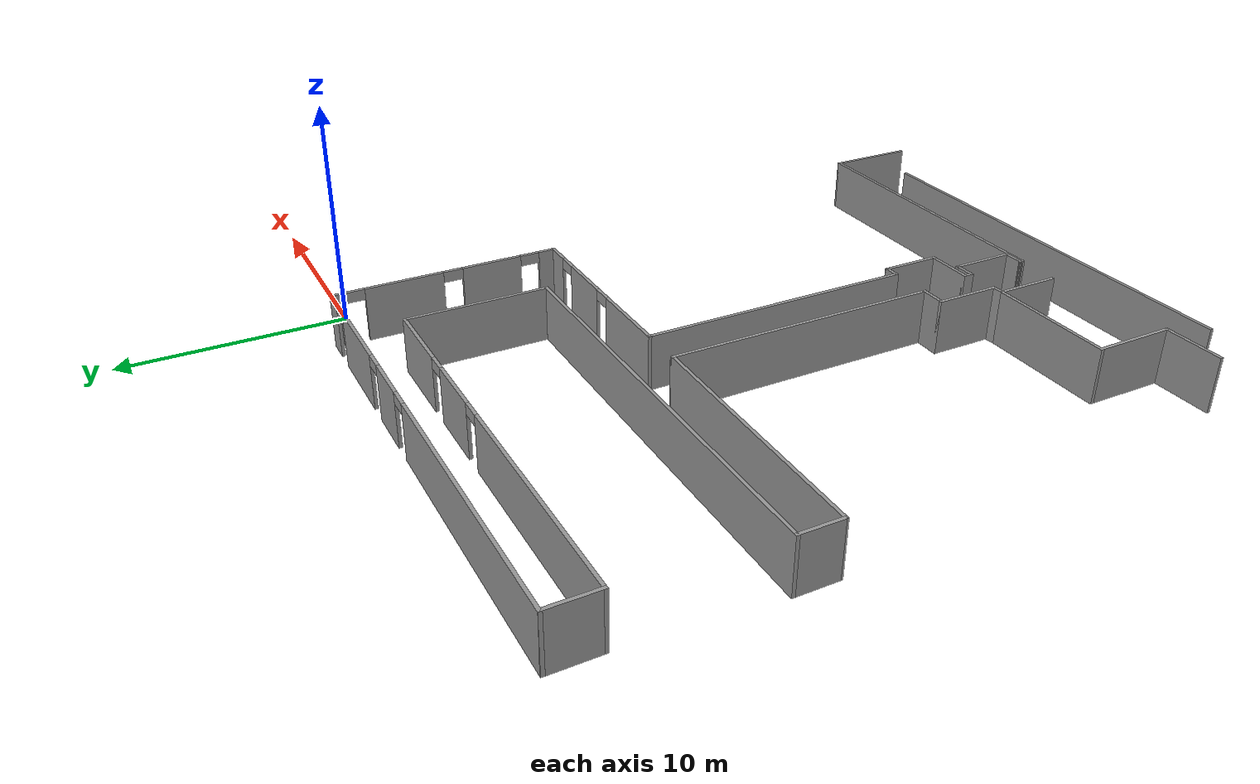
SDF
<?xml version='1.0'?>
<sdf version='1.6'>
  <model name='my_lab'>
    <pose frame=''>-12.1716 -15.3542 0 0 -0 0</pose>
    <link name='Wall_0'>
      <pose frame=''>-1.23673 16.3483 0 0 -0 0</pose>
      <visual name='Wall_0_Visual_0'>
        <pose frame=''>-4.88863 0 1.25 0 -0 0</pose>
        <geometry>
          <box>
            <size>12.4727 0.15 2.5</size>
          </box>
        </geometry>
        <material>
          <script>
            <uri>file://media/materials/scripts/gazebo.material</uri>
            <name>Gazebo/Grey</name>
          </script>
          <ambient>1 1 1 1</ambient>
        </material>
      </visual>
      <collision name='Wall_0_Collision_0'>
        <geometry>
          <box>
            <size>12.4727 0.15 2.5</size>
          </box>
        </geometry>
        <pose frame=''>-4.88863 0 1.25 0 -0 0</pose>
      </collision>
      <visual name='Wall_0_Visual_1'>
        <pose frame=''>3.34648 0 1.25 0 -0 0</pose>
        <geometry>
          <box>
            <size>2.19749 0.15 2.5</size>
          </box>
        </geometry>
        <material>
          <script>
            <uri>file://media/materials/scripts/gazebo.material</uri>
            <name>Gazebo/Grey</name>
          </script>
          <ambient>1 1 1 1</ambient>
        </material>
      </visual>
      <collision name='Wall_0_Collision_1'>
        <geometry>
          <box>
            <size>2.19749 0.15 2.5</size>
          </box>
        </geometry>
        <pose frame=''>3.34648 0 1.25 0 -0 0</pose>
      </collision>
      <visual name='Wall_0_Visual_2'>
        <pose frame=''>7.26822 0 1.25 0 -0 0</pose>
        <geometry>
          <box>
            <size>3.84599 0.15 2.5</size>
          </box>
        </geometry>
        <material>
          <script>
            <uri>file://media/materials/scripts/gazebo.material</uri>
            <name>Gazebo/Grey</name>
          </script>
          <ambient>1 1 1 1</ambient>
        </material>
      </visual>
      <collision name='Wall_0_Collision_2'>
        <geometry>
          <box>
            <size>3.84599 0.15 2.5</size>
          </box>
        </geometry>
        <pose frame=''>7.26822 0 1.25 0 -0 0</pose>
      </collision>
      <visual name='Wall_0_Visual_3'>
        <pose frame=''>10.6081 0 1.25 0 -0 0</pose>
        <geometry>
          <box>
            <size>1.03378 0.15 2.5</size>
          </box>
        </geometry>
        <material>
          <script>
            <uri>file://media/materials/scripts/gazebo.material</uri>
            <name>Gazebo/Grey</name>
          </script>
          <ambient>1 1 1 1</ambient>
        </material>
      </visual>
      <collision name='Wall_0_Collision_3'>
        <geometry>
          <box>
            <size>1.03378 0.15 2.5</size>
          </box>
        </geometry>
        <pose frame=''>10.6081 0 1.25 0 -0 0</pose>
      </collision>
      <visual name='Wall_0_Visual_4'>
        <pose frame=''>1.79773 0 2.25 0 -0 0</pose>
        <geometry>
          <box>
            <size>0.9 0.15 0.5</size>
          </box>
        </geometry>
        <material>
          <script>
            <uri>file://media/materials/scripts/gazebo.material</uri>
            <name>Gazebo/Grey</name>
          </script>
          <ambient>1 1 1 1</ambient>
        </material>
      </visual>
      <collision name='Wall_0_Collision_4'>
        <geometry>
          <box>
            <size>0.9 0.15 0.5</size>
          </box>
        </geometry>
        <pose frame=''>1.79773 0 2.25 0 -0 0</pose>
      </collision>
      <visual name='Wall_0_Visual_5'>
        <pose frame=''>4.89522 0 2.25 0 -0 0</pose>
        <geometry>
          <box>
            <size>0.9 0.15 0.5</size>
          </box>
        </geometry>
        <material>
          <script>
            <uri>file://media/materials/scripts/gazebo.material</uri>
            <name>Gazebo/Grey</name>
          </script>
          <ambient>1 1 1 1</ambient>
        </material>
      </visual>
      <collision name='Wall_0_Collision_5'>
        <geometry>
          <box>
            <size>0.9 0.15 0.5</size>
          </box>
        </geometry>
        <pose frame=''>4.89522 0 2.25 0 -0 0</pose>
      </collision>
      <visual name='Wall_0_Visual_6'>
        <pose frame=''>9.64122 0 2.25 0 -0 0</pose>
        <geometry>
          <box>
            <size>0.9 0.15 0.5</size>
          </box>
        </geometry>
        <material>
          <script>
            <uri>file://media/materials/scripts/gazebo.material</uri>
            <name>Gazebo/Grey</name>
          </script>
          <ambient>1 1 1 1</ambient>
        </material>
      </visual>
      <collision name='Wall_0_Collision_6'>
        <geometry>
          <box>
            <size>0.9 0.15 0.5</size>
          </box>
        </geometry>
        <pose frame=''>9.64122 0 2.25 0 -0 0</pose>
      </collision>
    </link>
    <link name='Wall_1'>
      <pose frame=''>9.81326 11.1733 0 0 0 -1.5708</pose>
      <visual name='Wall_1_Visual_0'>
        <pose frame=''>-4.95251 0 1.25 0 -0 0</pose>
        <geometry>
          <box>
            <size>0.594974 0.15 2.5</size>
          </box>
        </geometry>
        <material>
          <script>
            <uri>file://media/materials/scripts/gazebo.material</uri>
            <name>Gazebo/Grey</name>
          </script>
          <ambient>1 1 1 1</ambient>
        </material>
      </visual>
      <collision name='Wall_1_Collision_0'>
        <geometry>
          <box>
            <size>0.594974 0.15 2.5</size>
          </box>
        </geometry>
        <pose frame=''>-4.95251 0 1.25 0 -0 0</pose>
      </collision>
      <visual name='Wall_1_Visual_1'>
        <pose frame=''>-1.96947 0 1.25 0 -0 0</pose>
        <geometry>
          <box>
            <size>3.57111 0.15 2.5</size>
          </box>
        </geometry>
        <material>
          <script>
            <uri>file://media/materials/scripts/gazebo.material</uri>
            <name>Gazebo/Grey</name>
          </script>
          <ambient>1 1 1 1</ambient>
        </material>
      </visual>
      <collision name='Wall_1_Collision_1'>
        <geometry>
          <box>
            <size>3.57111 0.15 2.5</size>
          </box>
        </geometry>
        <pose frame=''>-1.96947 0 1.25 0 -0 0</pose>
      </collision>
      <visual name='Wall_1_Visual_2'>
        <pose frame=''>2.10843 0 1.25 0 -0 0</pose>
        <geometry>
          <box>
            <size>2.78469 0.15 2.5</size>
          </box>
        </geometry>
        <material>
          <script>
            <uri>file://media/materials/scripts/gazebo.material</uri>
            <name>Gazebo/Grey</name>
          </script>
          <ambient>1 1 1 1</ambient>
        </material>
      </visual>
      <collision name='Wall_1_Collision_2'>
        <geometry>
          <box>
            <size>2.78469 0.15 2.5</size>
          </box>
        </geometry>
        <pose frame=''>2.10843 0 1.25 0 -0 0</pose>
      </collision>
      <visual name='Wall_1_Visual_3'>
        <pose frame=''>4.82539 0 1.25 0 -0 0</pose>
        <geometry>
          <box>
            <size>0.849222 0.15 2.5</size>
          </box>
        </geometry>
        <material>
          <script>
            <uri>file://media/materials/scripts/gazebo.material</uri>
            <name>Gazebo/Grey</name>
          </script>
          <ambient>1 1 1 1</ambient>
        </material>
      </visual>
      <collision name='Wall_1_Collision_3'>
        <geometry>
          <box>
            <size>0.849222 0.15 2.5</size>
          </box>
        </geometry>
        <pose frame=''>4.82539 0 1.25 0 -0 0</pose>
      </collision>
      <visual name='Wall_1_Visual_4'>
        <pose frame=''>-4.20503 0 2.25 0 -0 0</pose>
        <geometry>
          <box>
            <size>0.9 0.15 0.5</size>
          </box>
        </geometry>
        <material>
          <script>
            <uri>file://media/materials/scripts/gazebo.material</uri>
            <name>Gazebo/Grey</name>
          </script>
          <ambient>1 1 1 1</ambient>
        </material>
      </visual>
      <collision name='Wall_1_Collision_4'>
        <geometry>
          <box>
            <size>0.9 0.15 0.5</size>
          </box>
        </geometry>
        <pose frame=''>-4.20503 0 2.25 0 -0 0</pose>
      </collision>
      <visual name='Wall_1_Visual_5'>
        <pose frame=''>0.266085 0 2.25 0 -0 0</pose>
        <geometry>
          <box>
            <size>0.9 0.15 0.5</size>
          </box>
        </geometry>
        <material>
          <script>
            <uri>file://media/materials/scripts/gazebo.material</uri>
            <name>Gazebo/Grey</name>
          </script>
          <ambient>1 1 1 1</ambient>
        </material>
      </visual>
      <collision name='Wall_1_Collision_5'>
        <geometry>
          <box>
            <size>0.9 0.15 0.5</size>
          </box>
        </geometry>
        <pose frame=''>0.266085 0 2.25 0 -0 0</pose>
      </collision>
      <visual name='Wall_1_Visual_6'>
        <pose frame=''>3.95078 0 2.25 0 -0 0</pose>
        <geometry>
          <box>
            <size>0.9 0.15 0.5</size>
          </box>
        </geometry>
        <material>
          <script>
            <uri>file://media/materials/scripts/gazebo.material</uri>
            <name>Gazebo/Grey</name>
          </script>
          <ambient>1 1 1 1</ambient>
        </material>
      </visual>
      <collision name='Wall_1_Collision_6'>
        <geometry>
          <box>
            <size>0.9 0.15 0.5</size>
          </box>
        </geometry>
        <pose frame=''>3.95078 0 2.25 0 -0 0</pose>
      </collision>
    </link>
    <link name='Wall_10'>
      <collision name='Wall_10_Collision'>
        <geometry>
          <box>
            <size>2 0.15 2.5</size>
          </box>
        </geometry>
        <pose frame=''>0 0 1.25 0 -0 0</pose>
      </collision>
      <visual name='Wall_10_Visual'>
        <pose frame=''>0 0 1.25 0 -0 0</pose>
        <geometry>
          <box>
            <size>2 0.15 2.5</size>
          </box>
        </geometry>
        <material>
          <script>
            <uri>file://media/materials/scripts/gazebo.material</uri>
            <name>Gazebo/Grey</name>
          </script>
          <ambient>1 1 1 1</ambient>
        </material>
      </visual>
      <pose frame=''>-12.7867 6.9733 0 0 0 -1.5708</pose>
    </link>
    <link name='Wall_11'>
      <collision name='Wall_11_Collision'>
        <geometry>
          <box>
            <size>11.5576 0.15 2.5</size>
          </box>
        </geometry>
        <pose frame=''>0 0 1.25 0 -0 0</pose>
      </collision>
      <visual name='Wall_11_Visual'>
        <pose frame=''>0 0 1.25 0 -0 0</pose>
        <geometry>
          <box>
            <size>11.5576 0.15 2.5</size>
          </box>
        </geometry>
        <material>
          <script>
            <uri>file://media/materials/scripts/gazebo.material</uri>
            <name>Gazebo/Grey</name>
          </script>
          <ambient>1 1 1 1</ambient>
        </material>
      </visual>
      <pose frame=''>-7.08316 5.99887 0 0 0 -0.008666</pose>
    </link>
    <link name='Wall_12'>
      <collision name='Wall_12_Collision'>
        <geometry>
          <box>
            <size>12.5 0.15 2.5</size>
          </box>
        </geometry>
        <pose frame=''>0 0 1.25 0 -0 0</pose>
      </collision>
      <visual name='Wall_12_Visual'>
        <pose frame=''>0 0 1.25 0 -0 0</pose>
        <geometry>
          <box>
            <size>12.5 0.15 2.5</size>
          </box>
        </geometry>
        <material>
          <script>
            <uri>file://media/materials/scripts/gazebo.material</uri>
            <name>Gazebo/Grey</name>
          </script>
          <ambient>1 1 1 1</ambient>
        </material>
      </visual>
      <pose frame=''>-1.4198 -0.225562 0 0 0 -1.5708</pose>
    </link>
    <link name='Wall_14'>
      <collision name='Wall_14_Collision'>
        <geometry>
          <box>
            <size>2.75 0.15 2.5</size>
          </box>
        </geometry>
        <pose frame=''>0 0 1.25 0 -0 0</pose>
      </collision>
      <visual name='Wall_14_Visual'>
        <pose frame=''>0 0 1.25 0 -0 0</pose>
        <geometry>
          <box>
            <size>2.75 0.15 2.5</size>
          </box>
        </geometry>
        <material>
          <script>
            <uri>file://media/materials/scripts/gazebo.material</uri>
            <name>Gazebo/Grey</name>
          </script>
          <ambient>1 1 1 1</ambient>
        </material>
      </visual>
      <pose frame=''>1.06326 -7.6517 0 0 0 -1.5708</pose>
    </link>
    <link name='Wall_15'>
      <collision name='Wall_15_Collision'>
        <geometry>
          <box>
            <size>2.25 0.15 2.5</size>
          </box>
        </geometry>
        <pose frame=''>0 0 1.25 0 -0 0</pose>
      </collision>
      <visual name='Wall_15_Visual'>
        <pose frame=''>0 0 1.25 0 -0 0</pose>
        <geometry>
          <box>
            <size>2.25 0.15 2.5</size>
          </box>
        </geometry>
        <material>
          <script>
            <uri>file://media/materials/scripts/gazebo.material</uri>
            <name>Gazebo/Grey</name>
          </script>
          <ambient>1 1 1 1</ambient>
        </material>
      </visual>
      <pose frame=''>0.013265 -8.9517 0 0 -0 3.14159</pose>
    </link>
    <link name='Wall_16'>
      <collision name='Wall_16_Collision'>
        <geometry>
          <box>
            <size>0.5 0.15 2.5</size>
          </box>
        </geometry>
        <pose frame=''>0 0 1.25 0 -0 0</pose>
      </collision>
      <visual name='Wall_16_Visual'>
        <pose frame=''>0 0 1.25 0 -0 0</pose>
        <geometry>
          <box>
            <size>0.5 0.15 2.5</size>
          </box>
        </geometry>
        <material>
          <script>
            <uri>file://media/materials/scripts/gazebo.material</uri>
            <name>Gazebo/Grey</name>
          </script>
          <ambient>1 1 1 1</ambient>
        </material>
      </visual>
      <pose frame=''>-1.03674 -9.1267 0 0 0 -1.5708</pose>
    </link>
    <link name='Wall_17'>
      <collision name='Wall_17_Collision'>
        <geometry>
          <box>
            <size>1 0.15 2.5</size>
          </box>
        </geometry>
        <pose frame=''>0 0 1.25 0 -0 0</pose>
      </collision>
      <visual name='Wall_17_Visual'>
        <pose frame=''>0 0 1.25 0 -0 0</pose>
        <geometry>
          <box>
            <size>1 0.15 2.5</size>
          </box>
        </geometry>
        <material>
          <script>
            <uri>file://media/materials/scripts/gazebo.material</uri>
            <name>Gazebo/Grey</name>
          </script>
          <ambient>1 1 1 1</ambient>
        </material>
      </visual>
      <pose frame=''>-0.611735 -9.3017 0 0 -0 0</pose>
    </link>
    <link name='Wall_18'>
      <collision name='Wall_18_Collision'>
        <geometry>
          <box>
            <size>3 0.15 2.5</size>
          </box>
        </geometry>
        <pose frame=''>0 0 1.25 0 -0 0</pose>
      </collision>
      <visual name='Wall_18_Visual'>
        <pose frame=''>0 0 1.25 0 -0 0</pose>
        <geometry>
          <box>
            <size>3 0.15 2.5</size>
          </box>
        </geometry>
        <material>
          <script>
            <uri>file://media/materials/scripts/gazebo.material</uri>
            <name>Gazebo/Grey</name>
          </script>
          <ambient>1 1 1 1</ambient>
        </material>
      </visual>
      <pose frame=''>-0.186735 -10.7267 0 0 0 -1.5708</pose>
    </link>
    <link name='Wall_2'>
      <pose frame=''>5.13826 5.9983 0 0 -0 3.14159</pose>
      <visual name='Wall_2_Visual_0'>
        <pose frame=''>-4.13574 0 1.25 0 -0 0</pose>
        <geometry>
          <box>
            <size>1.22853 0.15 2.5</size>
          </box>
        </geometry>
        <material>
          <script>
            <uri>file://media/materials/scripts/gazebo.material</uri>
            <name>Gazebo/Grey</name>
          </script>
          <ambient>1 1 1 1</ambient>
        </material>
      </visual>
      <collision name='Wall_2_Collision_0'>
        <geometry>
          <box>
            <size>1.22853 0.15 2.5</size>
          </box>
        </geometry>
        <pose frame=''>-4.13574 0 1.25 0 -0 0</pose>
      </collision>
      <visual name='Wall_2_Visual_1'>
        <pose frame=''>-1.32577 0 1.25 0 -0 0</pose>
        <geometry>
          <box>
            <size>2.5914 0.15 2.5</size>
          </box>
        </geometry>
        <material>
          <script>
            <uri>file://media/materials/scripts/gazebo.material</uri>
            <name>Gazebo/Grey</name>
          </script>
          <ambient>1 1 1 1</ambient>
        </material>
      </visual>
      <collision name='Wall_2_Collision_1'>
        <geometry>
          <box>
            <size>2.5914 0.15 2.5</size>
          </box>
        </geometry>
        <pose frame=''>-1.32577 0 1.25 0 -0 0</pose>
      </collision>
      <visual name='Wall_2_Visual_2'>
        <pose frame=''>2.80996 0 1.25 0 -0 0</pose>
        <geometry>
          <box>
            <size>3.88007 0.15 2.5</size>
          </box>
        </geometry>
        <material>
          <script>
            <uri>file://media/materials/scripts/gazebo.material</uri>
            <name>Gazebo/Grey</name>
          </script>
          <ambient>1 1 1 1</ambient>
        </material>
      </visual>
      <collision name='Wall_2_Collision_2'>
        <geometry>
          <box>
            <size>3.88007 0.15 2.5</size>
          </box>
        </geometry>
        <pose frame=''>2.80996 0 1.25 0 -0 0</pose>
      </collision>
      <visual name='Wall_2_Visual_3'>
        <pose frame=''>-3.07147 0 2.25 0 -0 0</pose>
        <geometry>
          <box>
            <size>0.9 0.15 0.5</size>
          </box>
        </geometry>
        <material>
          <script>
            <uri>file://media/materials/scripts/gazebo.material</uri>
            <name>Gazebo/Grey</name>
          </script>
          <ambient>1 1 1 1</ambient>
        </material>
      </visual>
      <collision name='Wall_2_Collision_3'>
        <geometry>
          <box>
            <size>0.9 0.15 0.5</size>
          </box>
        </geometry>
        <pose frame=''>-3.07147 0 2.25 0 -0 0</pose>
      </collision>
      <visual name='Wall_2_Visual_4'>
        <pose frame=''>0.419926 0 2.25 0 -0 0</pose>
        <geometry>
          <box>
            <size>0.9 0.15 0.5</size>
          </box>
        </geometry>
        <material>
          <script>
            <uri>file://media/materials/scripts/gazebo.material</uri>
            <name>Gazebo/Grey</name>
          </script>
          <ambient>1 1 1 1</ambient>
        </material>
      </visual>
      <collision name='Wall_2_Collision_4'>
        <geometry>
          <box>
            <size>0.9 0.15 0.5</size>
          </box>
        </geometry>
        <pose frame=''>0.419926 0 2.25 0 -0 0</pose>
      </collision>
    </link>
    <link name='Wall_20'>
      <collision name='Wall_20_Collision'>
        <geometry>
          <box>
            <size>1 0.15 2.5</size>
          </box>
        </geometry>
        <pose frame=''>0 0 1.25 0 -0 0</pose>
      </collision>
      <visual name='Wall_20_Visual'>
        <pose frame=''>0 0 1.25 0 -0 0</pose>
        <geometry>
          <box>
            <size>1 0.15 2.5</size>
          </box>
        </geometry>
        <material>
          <script>
            <uri>file://media/materials/scripts/gazebo.material</uri>
            <name>Gazebo/Grey</name>
          </script>
          <ambient>1 1 1 1</ambient>
        </material>
      </visual>
      <pose frame=''>-0.611735 -12.1517 0 0 -0 3.14159</pose>
    </link>
    <link name='Wall_21'>
      <collision name='Wall_21_Collision'>
        <geometry>
          <box>
            <size>0.25 0.15 2.5</size>
          </box>
        </geometry>
        <pose frame=''>0 0 1.25 0 -0 0</pose>
      </collision>
      <visual name='Wall_21_Visual'>
        <pose frame=''>0 0 1.25 0 -0 0</pose>
        <geometry>
          <box>
            <size>0.25 0.15 2.5</size>
          </box>
        </geometry>
        <material>
          <script>
            <uri>file://media/materials/scripts/gazebo.material</uri>
            <name>Gazebo/Grey</name>
          </script>
          <ambient>1 1 1 1</ambient>
        </material>
      </visual>
      <pose frame=''>-1.04968 -12.2 0 0 0 -1.8326</pose>
    </link>
    <link name='Wall_22'>
      <collision name='Wall_22_Collision'>
        <geometry>
          <box>
            <size>14 0.15 2.5</size>
          </box>
        </geometry>
        <pose frame=''>0 0 1.25 0 -0 0</pose>
      </collision>
      <visual name='Wall_22_Visual'>
        <pose frame=''>0 0 1.25 0 -0 0</pose>
        <geometry>
          <box>
            <size>14 0.15 2.5</size>
          </box>
        </geometry>
        <material>
          <script>
            <uri>file://media/materials/scripts/gazebo.material</uri>
            <name>Gazebo/Grey</name>
          </script>
          <ambient>1 1 1 1</ambient>
        </material>
      </visual>
      <pose frame=''>5.86238 -12.2483 0 0 -0 0</pose>
    </link>
    <link name='Wall_23'>
      <collision name='Wall_23_Collision'>
        <geometry>
          <box>
            <size>4.25 0.15 2.5</size>
          </box>
        </geometry>
        <pose frame=''>0 0 1.25 0 -0 0</pose>
      </collision>
      <visual name='Wall_23_Visual'>
        <pose frame=''>0 0 1.25 0 -0 0</pose>
        <geometry>
          <box>
            <size>4.25 0.15 2.5</size>
          </box>
        </geometry>
        <material>
          <script>
            <uri>file://media/materials/scripts/gazebo.material</uri>
            <name>Gazebo/Grey</name>
          </script>
          <ambient>1 1 1 1</ambient>
        </material>
      </visual>
      <pose frame=''>12.7874 -14.2983 0 0 0 -1.5708</pose>
    </link>
    <link name='Wall_25'>
      <collision name='Wall_25_Collision'>
        <geometry>
          <box>
            <size>19.5 0.15 2.5</size>
          </box>
        </geometry>
        <pose frame=''>0 0 1.25 0 -0 0</pose>
      </collision>
      <visual name='Wall_25_Visual'>
        <pose frame=''>0 0 1.25 0 -0 0</pose>
        <geometry>
          <box>
            <size>19.5 0.15 2.5</size>
          </box>
        </geometry>
        <material>
          <script>
            <uri>file://media/materials/scripts/gazebo.material</uri>
            <name>Gazebo/Grey</name>
          </script>
          <ambient>1 1 1 1</ambient>
        </material>
      </visual>
      <pose frame=''>0.259837 -14.4703 0 0 -0 3.14159</pose>
    </link>
    <link name='Wall_27'>
      <collision name='Wall_27_Collision'>
        <geometry>
          <box>
            <size>3 0.15 2.5</size>
          </box>
        </geometry>
        <pose frame=''>0 0 1.25 0 -0 0</pose>
      </collision>
      <visual name='Wall_27_Visual'>
        <pose frame=''>0 0 1.25 0 -0 0</pose>
        <geometry>
          <box>
            <size>3 0.15 2.5</size>
          </box>
        </geometry>
        <material>
          <script>
            <uri>file://media/materials/scripts/gazebo.material</uri>
            <name>Gazebo/Grey</name>
          </script>
          <ambient>1 1 1 1</ambient>
        </material>
      </visual>
      <pose frame=''>-3.00483 -10.7205 0 0 -0 1.5708</pose>
    </link>
    <link name='Wall_28'>
      <collision name='Wall_28_Collision'>
        <geometry>
          <box>
            <size>0.637101 0.15 2.5</size>
          </box>
        </geometry>
        <pose frame=''>0 0 1.25 0 -0 0</pose>
      </collision>
      <visual name='Wall_28_Visual'>
        <pose frame=''>0 0 1.25 0 -0 0</pose>
        <geometry>
          <box>
            <size>0.637101 0.15 2.5</size>
          </box>
        </geometry>
        <material>
          <script>
            <uri>file://media/materials/scripts/gazebo.material</uri>
            <name>Gazebo/Grey</name>
          </script>
          <ambient>1 1 1 1</ambient>
        </material>
      </visual>
      <pose frame=''>-2.76232 -9.27302 0 0 -0 0.092337</pose>
    </link>
    <link name='Wall_29'>
      <collision name='Wall_29_Collision'>
        <geometry>
          <box>
            <size>3 0.15 2.5</size>
          </box>
        </geometry>
        <pose frame=''>0 0 1.25 0 -0 0</pose>
      </collision>
      <visual name='Wall_29_Visual'>
        <pose frame=''>0 0 1.25 0 -0 0</pose>
        <geometry>
          <box>
            <size>3 0.15 2.5</size>
          </box>
        </geometry>
        <material>
          <script>
            <uri>file://media/materials/scripts/gazebo.material</uri>
            <name>Gazebo/Grey</name>
          </script>
          <ambient>1 1 1 1</ambient>
        </material>
      </visual>
      <pose frame=''>-2.5198 -7.82556 0 0 -0 1.5708</pose>
    </link>
    <link name='Wall_3'>
      <collision name='Wall_3_Collision'>
        <geometry>
          <box>
            <size>12.5 0.15 2.5</size>
          </box>
        </geometry>
        <pose frame=''>0 0 1.25 0 -0 0</pose>
      </collision>
      <visual name='Wall_3_Visual'>
        <pose frame=''>0 0 1.25 0 -0 0</pose>
        <geometry>
          <box>
            <size>12.5 0.15 2.5</size>
          </box>
        </geometry>
        <material>
          <script>
            <uri>file://media/materials/scripts/gazebo.material</uri>
            <name>Gazebo/Grey</name>
          </script>
          <ambient>1 1 1 1</ambient>
        </material>
      </visual>
      <pose frame=''>0.463264 -0.176703 0 0 0 -1.5708</pose>
    </link>
    <link name='Wall_32'>
      <collision name='Wall_32_Collision'>
        <geometry>
          <box>
            <size>1.25 0.15 2.5</size>
          </box>
        </geometry>
        <pose frame=''>0 0 1.25 0 -0 0</pose>
      </collision>
      <visual name='Wall_32_Visual'>
        <pose frame=''>0 0 1.25 0 -0 0</pose>
        <geometry>
          <box>
            <size>1.25 0.15 2.5</size>
          </box>
        </geometry>
        <material>
          <script>
            <uri>file://media/materials/scripts/gazebo.material</uri>
            <name>Gazebo/Grey</name>
          </script>
          <ambient>1 1 1 1</ambient>
        </material>
      </visual>
      <pose frame=''>-1.9698 -6.40056 0 0 -0 0</pose>
    </link>
    <link name='Wall_34'>
      <collision name='Wall_34_Collision'>
        <geometry>
          <box>
            <size>5.75 0.15 2.5</size>
          </box>
        </geometry>
        <pose frame=''>0 0 1.25 0 -0 0</pose>
      </collision>
      <visual name='Wall_34_Visual'>
        <pose frame=''>0 0 1.25 0 -0 0</pose>
        <geometry>
          <box>
            <size>5.75 0.15 2.5</size>
          </box>
        </geometry>
        <material>
          <script>
            <uri>file://media/materials/scripts/gazebo.material</uri>
            <name>Gazebo/Grey</name>
          </script>
          <ambient>1 1 1 1</ambient>
        </material>
      </visual>
      <pose frame=''>-5.80483 -9.29548 0 0 -0 3.14159</pose>
    </link>
    <link name='Wall_35'>
      <collision name='Wall_35_Collision'>
        <geometry>
          <box>
            <size>3.75 0.15 2.5</size>
          </box>
        </geometry>
        <pose frame=''>0 0 1.25 0 -0 0</pose>
      </collision>
      <visual name='Wall_35_Visual'>
        <pose frame=''>0 0 1.25 0 -0 0</pose>
        <geometry>
          <box>
            <size>3.75 0.15 2.5</size>
          </box>
        </geometry>
        <material>
          <script>
            <uri>file://media/materials/scripts/gazebo.material</uri>
            <name>Gazebo/Grey</name>
          </script>
          <ambient>1 1 1 1</ambient>
        </material>
      </visual>
      <pose frame=''>-8.60483 -11.0955 0 0 0 -1.5708</pose>
    </link>
    <link name='Wall_36'>
      <collision name='Wall_36_Collision'>
        <geometry>
          <box>
            <size>2.75 0.15 2.5</size>
          </box>
        </geometry>
        <pose frame=''>0 0 1.25 0 -0 0</pose>
      </collision>
      <visual name='Wall_36_Visual'>
        <pose frame=''>0 0 1.25 0 -0 0</pose>
        <geometry>
          <box>
            <size>2.75 0.15 2.5</size>
          </box>
        </geometry>
        <material>
          <script>
            <uri>file://media/materials/scripts/gazebo.material</uri>
            <name>Gazebo/Grey</name>
          </script>
          <ambient>1 1 1 1</ambient>
        </material>
      </visual>
      <pose frame=''>-9.90483 -12.8955 0 0 -0 3.14159</pose>
    </link>
    <link name='Wall_4'>
      <collision name='Wall_4_Collision'>
        <geometry>
          <box>
            <size>0.75 0.15 2.5</size>
          </box>
        </geometry>
        <pose frame=''>0 0 1.25 0 -0 0</pose>
      </collision>
      <visual name='Wall_4_Visual'>
        <pose frame=''>0 0 1.25 0 -0 0</pose>
        <geometry>
          <box>
            <size>0.75 0.15 2.5</size>
          </box>
        </geometry>
        <material>
          <script>
            <uri>file://media/materials/scripts/gazebo.material</uri>
            <name>Gazebo/Grey</name>
          </script>
          <ambient>1 1 1 1</ambient>
        </material>
      </visual>
      <pose frame=''>0.763265 -6.3517 0 0 -0 0</pose>
    </link>
    <link name='Wall_6'>
      <collision name='Wall_6_Collision'>
        <geometry>
          <box>
            <size>2.25 0.15 2.5</size>
          </box>
        </geometry>
        <pose frame=''>0 0 1.25 0 -0 0</pose>
      </collision>
      <visual name='Wall_6_Visual'>
        <pose frame=''>0 0 1.25 0 -0 0</pose>
        <geometry>
          <box>
            <size>2.25 0.15 2.5</size>
          </box>
        </geometry>
        <material>
          <script>
            <uri>file://media/materials/scripts/gazebo.material</uri>
            <name>Gazebo/Grey</name>
          </script>
          <ambient>1 1 1 1</ambient>
        </material>
      </visual>
      <pose frame=''>-12.2867 15.2983 0 0 0 -1.5708</pose>
    </link>
    <link name='Wall_7'>
      <pose frame=''>-2.98673 14.2483 0 0 -0 0</pose>
      <visual name='Wall_7_Visual_0'>
        <pose frame=''>-4.09966 0 1.25 0 -0 0</pose>
        <geometry>
          <box>
            <size>10.5507 0.15 2.5</size>
          </box>
        </geometry>
        <material>
          <script>
            <uri>file://media/materials/scripts/gazebo.material</uri>
            <name>Gazebo/Grey</name>
          </script>
          <ambient>1 1 1 1</ambient>
        </material>
      </visual>
      <collision name='Wall_7_Collision_0'>
        <geometry>
          <box>
            <size>10.5507 0.15 2.5</size>
          </box>
        </geometry>
        <pose frame=''>-4.09966 0 1.25 0 -0 0</pose>
      </collision>
      <visual name='Wall_7_Visual_1'>
        <pose frame=''>3.48959 0 1.25 0 -0 0</pose>
        <geometry>
          <box>
            <size>2.82783 0.15 2.5</size>
          </box>
        </geometry>
        <material>
          <script>
            <uri>file://media/materials/scripts/gazebo.material</uri>
            <name>Gazebo/Grey</name>
          </script>
          <ambient>1 1 1 1</ambient>
        </material>
      </visual>
      <collision name='Wall_7_Collision_1'>
        <geometry>
          <box>
            <size>2.82783 0.15 2.5</size>
          </box>
        </geometry>
        <pose frame=''>3.48959 0 1.25 0 -0 0</pose>
      </collision>
      <visual name='Wall_7_Visual_2'>
        <pose frame=''>7.58925 0 1.25 0 -0 0</pose>
        <geometry>
          <box>
            <size>3.5715 0.15 2.5</size>
          </box>
        </geometry>
        <material>
          <script>
            <uri>file://media/materials/scripts/gazebo.material</uri>
            <name>Gazebo/Grey</name>
          </script>
          <ambient>1 1 1 1</ambient>
        </material>
      </visual>
      <collision name='Wall_7_Collision_2'>
        <geometry>
          <box>
            <size>3.5715 0.15 2.5</size>
          </box>
        </geometry>
        <pose frame=''>7.58925 0 1.25 0 -0 0</pose>
      </collision>
      <visual name='Wall_7_Visual_3'>
        <pose frame=''>1.62567 0 2.25 0 -0 0</pose>
        <geometry>
          <box>
            <size>0.9 0.15 0.5</size>
          </box>
        </geometry>
        <material>
          <script>
            <uri>file://media/materials/scripts/gazebo.material</uri>
            <name>Gazebo/Grey</name>
          </script>
          <ambient>1 1 1 1</ambient>
        </material>
      </visual>
      <collision name='Wall_7_Collision_3'>
        <geometry>
          <box>
            <size>0.9 0.15 0.5</size>
          </box>
        </geometry>
        <pose frame=''>1.62567 0 2.25 0 -0 0</pose>
      </collision>
      <visual name='Wall_7_Visual_4'>
        <pose frame=''>5.35351 0 2.25 0 -0 0</pose>
        <geometry>
          <box>
            <size>0.9 0.15 0.5</size>
          </box>
        </geometry>
        <material>
          <script>
            <uri>file://media/materials/scripts/gazebo.material</uri>
            <name>Gazebo/Grey</name>
          </script>
          <ambient>1 1 1 1</ambient>
        </material>
      </visual>
      <collision name='Wall_7_Collision_4'>
        <geometry>
          <box>
            <size>0.9 0.15 0.5</size>
          </box>
        </geometry>
        <pose frame=''>5.35351 0 2.25 0 -0 0</pose>
      </collision>
    </link>
    <link name='Wall_8'>
      <collision name='Wall_8_Collision'>
        <geometry>
          <box>
            <size>6.5 0.15 2.5</size>
          </box>
        </geometry>
        <pose frame=''>0 0 1.25 0 -0 0</pose>
      </collision>
      <visual name='Wall_8_Visual'>
        <pose frame=''>0 0 1.25 0 -0 0</pose>
        <geometry>
          <box>
            <size>6.5 0.15 2.5</size>
          </box>
        </geometry>
        <material>
          <script>
            <uri>file://media/materials/scripts/gazebo.material</uri>
            <name>Gazebo/Grey</name>
          </script>
          <ambient>1 1 1 1</ambient>
        </material>
      </visual>
      <pose frame=''>6.31327 11.0733 0 0 0 -1.5708</pose>
    </link>
    <link name='Wall_9'>
      <collision name='Wall_9_Collision'>
        <geometry>
          <box>
            <size>19.25 0.15 2.5</size>
          </box>
        </geometry>
        <pose frame=''>0 0 1.25 0 -0 0</pose>
      </collision>
      <visual name='Wall_9_Visual'>
        <pose frame=''>0 0 1.25 0 -0 0</pose>
        <geometry>
          <box>
            <size>19.25 0.15 2.5</size>
          </box>
        </geometry>
        <material>
          <script>
            <uri>file://media/materials/scripts/gazebo.material</uri>
            <name>Gazebo/Grey</name>
          </script>
          <ambient>1 1 1 1</ambient>
        </material>
      </visual>
      <pose frame=''>-3.23673 7.8983 0 0 -0 3.14159</pose>
    </link>
    <static>1</static>
  </model>
</sdf>
